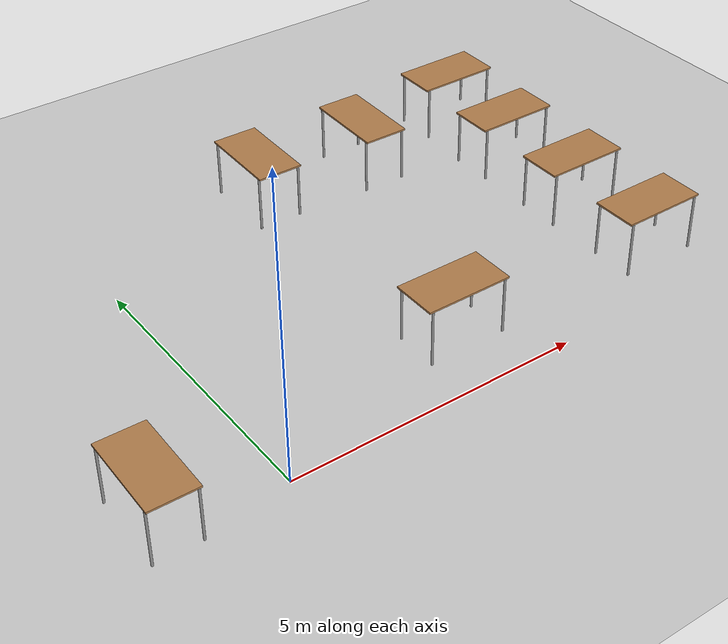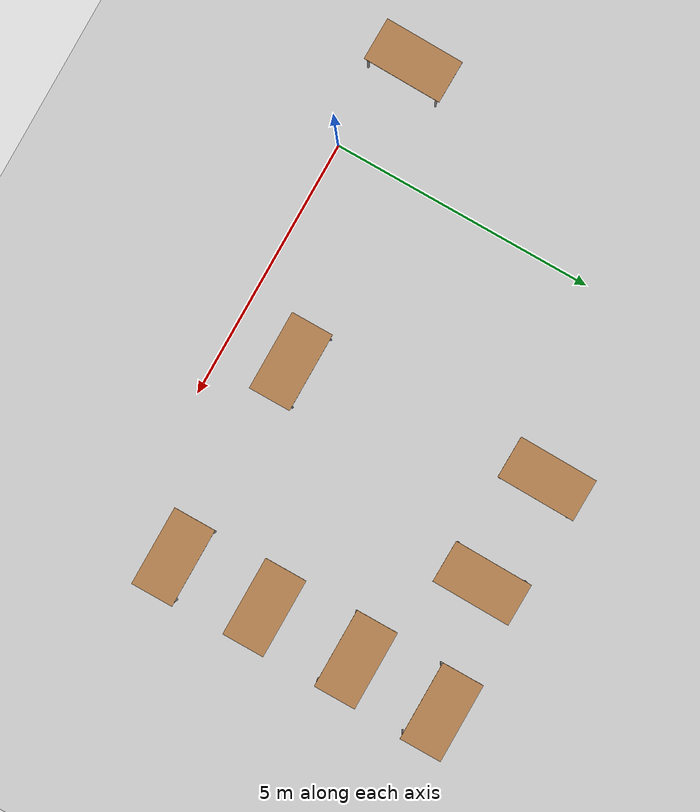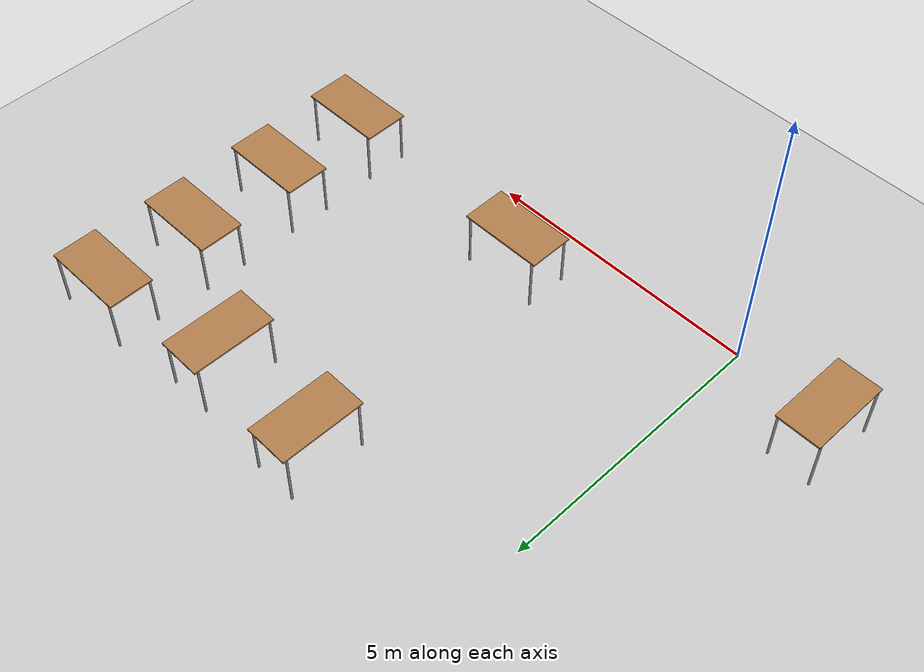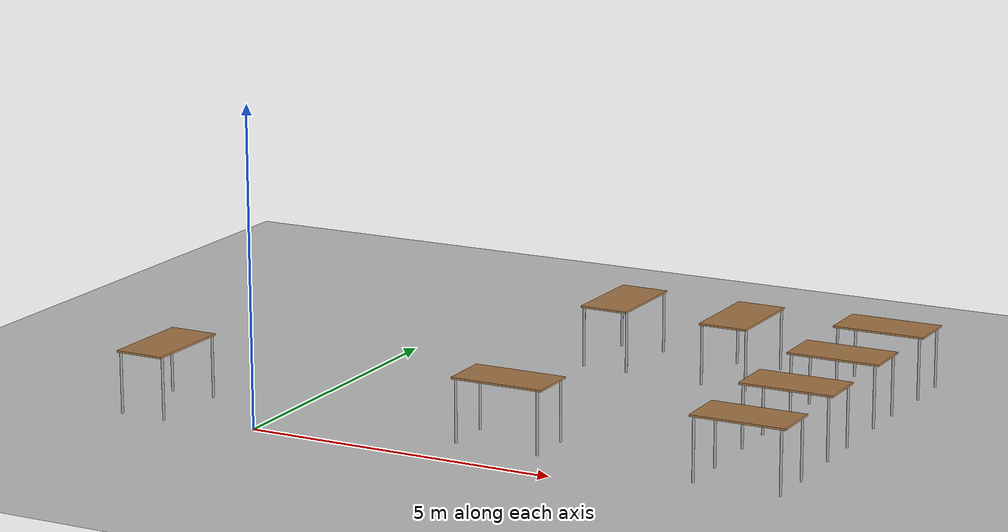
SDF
<sdf version="1.7">
 <world name="default">
  <model name="ground_plane">
   <static>1</static>
   <link name="link">
    <collision name="collision">
     <geometry><plane><normal>0 0 1</normal><size>100 100</size></plane></geometry>
     <surface><friction><ode><mu>100</mu><mu2>50</mu2></ode></friction></surface>
    </collision>
    <visual name="visual">
     <cast_shadows>0</cast_shadows>
     <geometry><plane><normal>0 0 1</normal><size>100 100</size></plane></geometry>
     <material>
      <script><uri>file://media/materials/scripts/gazebo.material</uri><name>Gazebo/Grey</name></script>
     </material>
    </visual>
   </link>
  </model>
  <model name="table_1">
   <static>1</static>
   <link name="link">
    <collision name="surface">
     <pose>0 0 1 0 -0 0</pose>
     <geometry><box><size>1.5 0.8 0.03</size></box></geometry>
     <surface><friction><ode><mu>0.6</mu><mu2>0.6</mu2></ode></friction></surface>
    </collision>
    <visual name="visual1">
     <pose>0 0 1 0 -0 0</pose>
     <geometry><box><size>1.5 0.8 0.03</size></box></geometry>
     <material>
      <script><uri>file://media/materials/scripts/gazebo.material</uri><name>Gazebo/Wood</name></script>
     </material>
    </visual>
    <collision name="front_left_leg">
     <pose>0.68 0.38 0.5 0 -0 0</pose>
     <geometry><cylinder><radius>0.02</radius><length>1</length></cylinder></geometry>
    </collision>
    <visual name="front_left_leg">
     <pose>0.68 0.38 0.5 0 -0 0</pose>
     <geometry><cylinder><radius>0.02</radius><length>1</length></cylinder></geometry>
     <material>
      <script><uri>file://media/materials/scripts/gazebo.material</uri><name>Gazebo/Grey</name></script>
     </material>
    </visual>
    <collision name="front_right_leg">
     <pose>0.68 -0.38 0.5 0 -0 0</pose>
     <geometry><cylinder><radius>0.02</radius><length>1</length></cylinder></geometry>
    </collision>
    <visual name="front_right_leg">
     <pose>0.68 -0.38 0.5 0 -0 0</pose>
     <geometry><cylinder><radius>0.02</radius><length>1</length></cylinder></geometry>
     <material>
      <script><uri>file://media/materials/scripts/gazebo.material</uri><name>Gazebo/Grey</name></script>
     </material>
    </visual>
    <collision name="back_right_leg">
     <pose>-0.68 -0.38 0.5 0 -0 0</pose>
     <geometry><cylinder><radius>0.02</radius><length>1</length></cylinder></geometry>
    </collision>
    <visual name="back_right_leg">
     <pose>-0.68 -0.38 0.5 0 -0 0</pose>
     <geometry><cylinder><radius>0.02</radius><length>1</length></cylinder></geometry>
     <material>
      <script><uri>file://media/materials/scripts/gazebo.material</uri><name>Gazebo/Grey</name></script>
     </material>
    </visual>
    <collision name="back_left_leg">
     <pose>-0.68 0.38 0.5 0 -0 0</pose>
     <geometry><cylinder><radius>0.02</radius><length>1</length></cylinder></geometry>
    </collision>
    <visual name="back_left_leg">
     <pose>-0.68 0.38 0.5 0 -0 0</pose>
     <geometry><cylinder><radius>0.02</radius><length>1</length></cylinder></geometry>
     <material>
      <script><uri>file://media/materials/scripts/gazebo.material</uri><name>Gazebo/Grey</name></script>
     </material>
    </visual>
   </link>
   <pose>7.67729 6.41149 0 0 -0 0</pose>
  </model>
  <model name="table_2">
   <static>1</static>
   <link name="link">
    <collision name="surface">
     <pose>0 0 1 0 -0 0</pose>
     <geometry><box><size>1.5 0.8 0.03</size></box></geometry>
     <surface><friction><ode><mu>0.6</mu><mu2>0.6</mu2></ode></friction></surface>
    </collision>
    <visual name="visual1">
     <pose>0 0 1 0 -0 0</pose>
     <geometry><box><size>1.5 0.8 0.03</size></box></geometry>
     <material>
      <script><uri>file://media/materials/scripts/gazebo.material</uri><name>Gazebo/Wood</name></script>
     </material>
    </visual>
    <collision name="front_left_leg">
     <pose>0.68 0.38 0.5 0 -0 0</pose>
     <geometry><cylinder><radius>0.02</radius><length>1</length></cylinder></geometry>
    </collision>
    <visual name="front_left_leg">
     <pose>0.68 0.38 0.5 0 -0 0</pose>
     <geometry><cylinder><radius>0.02</radius><length>1</length></cylinder></geometry>
     <material>
      <script><uri>file://media/materials/scripts/gazebo.material</uri><name>Gazebo/Grey</name></script>
     </material>
    </visual>
    <collision name="front_right_leg">
     <pose>0.68 -0.38 0.5 0 -0 0</pose>
     <geometry><cylinder><radius>0.02</radius><length>1</length></cylinder></geometry>
    </collision>
    <visual name="front_right_leg">
     <pose>0.68 -0.38 0.5 0 -0 0</pose>
     <geometry><cylinder><radius>0.02</radius><length>1</length></cylinder></geometry>
     <material>
      <script><uri>file://media/materials/scripts/gazebo.material</uri><name>Gazebo/Grey</name></script>
     </material>
    </visual>
    <collision name="back_right_leg">
     <pose>-0.68 -0.38 0.5 0 -0 0</pose>
     <geometry><cylinder><radius>0.02</radius><length>1</length></cylinder></geometry>
    </collision>
    <visual name="back_right_leg">
     <pose>-0.68 -0.38 0.5 0 -0 0</pose>
     <geometry><cylinder><radius>0.02</radius><length>1</length></cylinder></geometry>
     <material>
      <script><uri>file://media/materials/scripts/gazebo.material</uri><name>Gazebo/Grey</name></script>
     </material>
    </visual>
    <collision name="back_left_leg">
     <pose>-0.68 0.38 0.5 0 -0 0</pose>
     <geometry><cylinder><radius>0.02</radius><length>1</length></cylinder></geometry>
    </collision>
    <visual name="back_left_leg">
     <pose>-0.68 0.38 0.5 0 -0 0</pose>
     <geometry><cylinder><radius>0.02</radius><length>1</length></cylinder></geometry>
     <material>
      <script><uri>file://media/materials/scripts/gazebo.material</uri><name>Gazebo/Grey</name></script>
     </material>
    </visual>
   </link>
   <pose>7.62057 4.68594 0 0 -0 0</pose>
  </model>
  <model name="table_3">
   <static>1</static>
   <link name="link">
    <collision name="surface">
     <pose>0 0 1 0 -0 0</pose>
     <geometry><box><size>1.5 0.8 0.03</size></box></geometry>
     <surface><friction><ode><mu>0.6</mu><mu2>0.6</mu2></ode></friction></surface>
    </collision>
    <visual name="visual1">
     <pose>0 0 1 0 -0 0</pose>
     <geometry><box><size>1.5 0.8 0.03</size></box></geometry>
     <material>
      <script><uri>file://media/materials/scripts/gazebo.material</uri><name>Gazebo/Wood</name></script>
     </material>
    </visual>
    <collision name="front_left_leg">
     <pose>0.68 0.38 0.5 0 -0 0</pose>
     <geometry><cylinder><radius>0.02</radius><length>1</length></cylinder></geometry>
    </collision>
    <visual name="front_left_leg">
     <pose>0.68 0.38 0.5 0 -0 0</pose>
     <geometry><cylinder><radius>0.02</radius><length>1</length></cylinder></geometry>
     <material>
      <script><uri>file://media/materials/scripts/gazebo.material</uri><name>Gazebo/Grey</name></script>
     </material>
    </visual>
    <collision name="front_right_leg">
     <pose>0.68 -0.38 0.5 0 -0 0</pose>
     <geometry><cylinder><radius>0.02</radius><length>1</length></cylinder></geometry>
    </collision>
    <visual name="front_right_leg">
     <pose>0.68 -0.38 0.5 0 -0 0</pose>
     <geometry><cylinder><radius>0.02</radius><length>1</length></cylinder></geometry>
     <material>
      <script><uri>file://media/materials/scripts/gazebo.material</uri><name>Gazebo/Grey</name></script>
     </material>
    </visual>
    <collision name="back_right_leg">
     <pose>-0.68 -0.38 0.5 0 -0 0</pose>
     <geometry><cylinder><radius>0.02</radius><length>1</length></cylinder></geometry>
    </collision>
    <visual name="back_right_leg">
     <pose>-0.68 -0.38 0.5 0 -0 0</pose>
     <geometry><cylinder><radius>0.02</radius><length>1</length></cylinder></geometry>
     <material>
      <script><uri>file://media/materials/scripts/gazebo.material</uri><name>Gazebo/Grey</name></script>
     </material>
    </visual>
    <collision name="back_left_leg">
     <pose>-0.68 0.38 0.5 0 -0 0</pose>
     <geometry><cylinder><radius>0.02</radius><length>1</length></cylinder></geometry>
    </collision>
    <visual name="back_left_leg">
     <pose>-0.68 0.38 0.5 0 -0 0</pose>
     <geometry><cylinder><radius>0.02</radius><length>1</length></cylinder></geometry>
     <material>
      <script><uri>file://media/materials/scripts/gazebo.material</uri><name>Gazebo/Grey</name></script>
     </material>
    </visual>
   </link>
   <pose>7.61756 2.87716 0 0 -0 0</pose>
  </model>
  <model name="table_4">
   <static>1</static>
   <link name="link">
    <collision name="surface">
     <pose>0 0 1 0 -0 0</pose>
     <geometry><box><size>1.5 0.8 0.03</size></box></geometry>
     <surface><friction><ode><mu>0.6</mu><mu2>0.6</mu2></ode></friction></surface>
    </collision>
    <visual name="visual1">
     <pose>0 0 1 0 -0 0</pose>
     <geometry><box><size>1.5 0.8 0.03</size></box></geometry>
     <material>
      <script><uri>file://media/materials/scripts/gazebo.material</uri><name>Gazebo/Wood</name></script>
     </material>
    </visual>
    <collision name="front_left_leg">
     <pose>0.68 0.38 0.5 0 -0 0</pose>
     <geometry><cylinder><radius>0.02</radius><length>1</length></cylinder></geometry>
    </collision>
    <visual name="front_left_leg">
     <pose>0.68 0.38 0.5 0 -0 0</pose>
     <geometry><cylinder><radius>0.02</radius><length>1</length></cylinder></geometry>
     <material>
      <script><uri>file://media/materials/scripts/gazebo.material</uri><name>Gazebo/Grey</name></script>
     </material>
    </visual>
    <collision name="front_right_leg">
     <pose>0.68 -0.38 0.5 0 -0 0</pose>
     <geometry><cylinder><radius>0.02</radius><length>1</length></cylinder></geometry>
    </collision>
    <visual name="front_right_leg">
     <pose>0.68 -0.38 0.5 0 -0 0</pose>
     <geometry><cylinder><radius>0.02</radius><length>1</length></cylinder></geometry>
     <material>
      <script><uri>file://media/materials/scripts/gazebo.material</uri><name>Gazebo/Grey</name></script>
     </material>
    </visual>
    <collision name="back_right_leg">
     <pose>-0.68 -0.38 0.5 0 -0 0</pose>
     <geometry><cylinder><radius>0.02</radius><length>1</length></cylinder></geometry>
    </collision>
    <visual name="back_right_leg">
     <pose>-0.68 -0.38 0.5 0 -0 0</pose>
     <geometry><cylinder><radius>0.02</radius><length>1</length></cylinder></geometry>
     <material>
      <script><uri>file://media/materials/scripts/gazebo.material</uri><name>Gazebo/Grey</name></script>
     </material>
    </visual>
    <collision name="back_left_leg">
     <pose>-0.68 0.38 0.5 0 -0 0</pose>
     <geometry><cylinder><radius>0.02</radius><length>1</length></cylinder></geometry>
    </collision>
    <visual name="back_left_leg">
     <pose>-0.68 0.38 0.5 0 -0 0</pose>
     <geometry><cylinder><radius>0.02</radius><length>1</length></cylinder></geometry>
     <material>
      <script><uri>file://media/materials/scripts/gazebo.material</uri><name>Gazebo/Grey</name></script>
     </material>
    </visual>
   </link>
   <pose>7.63692 1.08746 0 0 -0 0</pose>
  </model>
  <model name="table_6">
   <static>1</static>
   <link name="link">
    <collision name="surface">
     <pose>0 0 1 0 -0 0</pose>
     <geometry><box><size>1.5 0.8 0.03</size></box></geometry>
     <surface><friction><ode><mu>0.6</mu><mu2>0.6</mu2></ode></friction></surface>
    </collision>
    <visual name="visual1">
     <pose>0 0 1 0 -0 0</pose>
     <geometry><box><size>1.5 0.8 0.03</size></box></geometry>
     <material>
      <script><uri>file://media/materials/scripts/gazebo.material</uri><name>Gazebo/Wood</name></script>
     </material>
    </visual>
    <collision name="front_left_leg">
     <pose>0.68 0.38 0.5 0 -0 0</pose>
     <geometry><cylinder><radius>0.02</radius><length>1</length></cylinder></geometry>
    </collision>
    <visual name="front_left_leg">
     <pose>0.68 0.38 0.5 0 -0 0</pose>
     <geometry><cylinder><radius>0.02</radius><length>1</length></cylinder></geometry>
     <material>
      <script><uri>file://media/materials/scripts/gazebo.material</uri><name>Gazebo/Grey</name></script>
     </material>
    </visual>
    <collision name="front_right_leg">
     <pose>0.68 -0.38 0.5 0 -0 0</pose>
     <geometry><cylinder><radius>0.02</radius><length>1</length></cylinder></geometry>
    </collision>
    <visual name="front_right_leg">
     <pose>0.68 -0.38 0.5 0 -0 0</pose>
     <geometry><cylinder><radius>0.02</radius><length>1</length></cylinder></geometry>
     <material>
      <script><uri>file://media/materials/scripts/gazebo.material</uri><name>Gazebo/Grey</name></script>
     </material>
    </visual>
    <collision name="back_right_leg">
     <pose>-0.68 -0.38 0.5 0 -0 0</pose>
     <geometry><cylinder><radius>0.02</radius><length>1</length></cylinder></geometry>
    </collision>
    <visual name="back_right_leg">
     <pose>-0.68 -0.38 0.5 0 -0 0</pose>
     <geometry><cylinder><radius>0.02</radius><length>1</length></cylinder></geometry>
     <material>
      <script><uri>file://media/materials/scripts/gazebo.material</uri><name>Gazebo/Grey</name></script>
     </material>
    </visual>
    <collision name="back_left_leg">
     <pose>-0.68 0.38 0.5 0 -0 0</pose>
     <geometry><cylinder><radius>0.02</radius><length>1</length></cylinder></geometry>
    </collision>
    <visual name="back_left_leg">
     <pose>-0.68 0.38 0.5 0 -0 0</pose>
     <geometry><cylinder><radius>0.02</radius><length>1</length></cylinder></geometry>
     <material>
      <script><uri>file://media/materials/scripts/gazebo.material</uri><name>Gazebo/Grey</name></script>
     </material>
    </visual>
   </link>
   <pose>3.71815 1.18577 0 0 -0 0</pose>
  </model>
  <model name="table_clone_clone_0_clone_3">
   <static>1</static>
   <link name="link">
    <collision name="surface">
     <pose>0 0 1 0 -0 0</pose>
     <geometry><box><size>1.5 0.8 0.03</size></box></geometry>
     <surface><friction><ode><mu>0.6</mu><mu2>0.6</mu2></ode></friction></surface>
    </collision>
    <visual name="visual1">
     <pose>0 0 1 0 -0 0</pose>
     <geometry><box><size>1.5 0.8 0.03</size></box></geometry>
     <material>
      <script><uri>file://media/materials/scripts/gazebo.material</uri><name>Gazebo/Wood</name></script>
     </material>
    </visual>
    <collision name="front_left_leg">
     <pose>0.68 0.38 0.5 0 -0 0</pose>
     <geometry><cylinder><radius>0.02</radius><length>1</length></cylinder></geometry>
    </collision>
    <visual name="front_left_leg">
     <pose>0.68 0.38 0.5 0 -0 0</pose>
     <geometry><cylinder><radius>0.02</radius><length>1</length></cylinder></geometry>
     <material>
      <script><uri>file://media/materials/scripts/gazebo.material</uri><name>Gazebo/Grey</name></script>
     </material>
    </visual>
    <collision name="front_right_leg">
     <pose>0.68 -0.38 0.5 0 -0 0</pose>
     <geometry><cylinder><radius>0.02</radius><length>1</length></cylinder></geometry>
    </collision>
    <visual name="front_right_leg">
     <pose>0.68 -0.38 0.5 0 -0 0</pose>
     <geometry><cylinder><radius>0.02</radius><length>1</length></cylinder></geometry>
     <material>
      <script><uri>file://media/materials/scripts/gazebo.material</uri><name>Gazebo/Grey</name></script>
     </material>
    </visual>
    <collision name="back_right_leg">
     <pose>-0.68 -0.38 0.5 0 -0 0</pose>
     <geometry><cylinder><radius>0.02</radius><length>1</length></cylinder></geometry>
    </collision>
    <visual name="back_right_leg">
     <pose>-0.68 -0.38 0.5 0 -0 0</pose>
     <geometry><cylinder><radius>0.02</radius><length>1</length></cylinder></geometry>
     <material>
      <script><uri>file://media/materials/scripts/gazebo.material</uri><name>Gazebo/Grey</name></script>
     </material>
    </visual>
    <collision name="back_left_leg">
     <pose>-0.68 0.38 0.5 0 -0 0</pose>
     <geometry><cylinder><radius>0.02</radius><length>1</length></cylinder></geometry>
    </collision>
    <visual name="back_left_leg">
     <pose>-0.68 0.38 0.5 0 -0 0</pose>
     <geometry><cylinder><radius>0.02</radius><length>1</length></cylinder></geometry>
     <material>
      <script><uri>file://media/materials/scripts/gazebo.material</uri><name>Gazebo/Grey</name></script>
     </material>
    </visual>
   </link>
   <pose>-1.83355 0.458726 0 0 0 -1.58514</pose>
  </model>
  <model name="table_clone_clone_0_clone_3_clone_2_clone">
   <static>1</static>
   <link name="link">
    <collision name="surface">
     <pose>0 0 1 0 -0 0</pose>
     <geometry><box><size>1.5 0.8 0.03</size></box></geometry>
     <surface><friction><ode><mu>0.6</mu><mu2>0.6</mu2></ode></friction></surface>
    </collision>
    <visual name="visual1">
     <pose>0 0 1 0 -0 0</pose>
     <geometry><box><size>1.5 0.8 0.03</size></box></geometry>
     <material>
      <script><uri>file://media/materials/scripts/gazebo.material</uri><name>Gazebo/Wood</name></script>
     </material>
    </visual>
    <collision name="front_left_leg">
     <pose>0.68 0.38 0.5 0 -0 0</pose>
     <geometry><cylinder><radius>0.02</radius><length>1</length></cylinder></geometry>
    </collision>
    <visual name="front_left_leg">
     <pose>0.68 0.38 0.5 0 -0 0</pose>
     <geometry><cylinder><radius>0.02</radius><length>1</length></cylinder></geometry>
     <material>
      <script><uri>file://media/materials/scripts/gazebo.material</uri><name>Gazebo/Grey</name></script>
     </material>
    </visual>
    <collision name="front_right_leg">
     <pose>0.68 -0.38 0.5 0 -0 0</pose>
     <geometry><cylinder><radius>0.02</radius><length>1</length></cylinder></geometry>
    </collision>
    <visual name="front_right_leg">
     <pose>0.68 -0.38 0.5 0 -0 0</pose>
     <geometry><cylinder><radius>0.02</radius><length>1</length></cylinder></geometry>
     <material>
      <script><uri>file://media/materials/scripts/gazebo.material</uri><name>Gazebo/Grey</name></script>
     </material>
    </visual>
    <collision name="back_right_leg">
     <pose>-0.68 -0.38 0.5 0 -0 0</pose>
     <geometry><cylinder><radius>0.02</radius><length>1</length></cylinder></geometry>
    </collision>
    <visual name="back_right_leg">
     <pose>-0.68 -0.38 0.5 0 -0 0</pose>
     <geometry><cylinder><radius>0.02</radius><length>1</length></cylinder></geometry>
     <material>
      <script><uri>file://media/materials/scripts/gazebo.material</uri><name>Gazebo/Grey</name></script>
     </material>
    </visual>
    <collision name="back_left_leg">
     <pose>-0.68 0.38 0.5 0 -0 0</pose>
     <geometry><cylinder><radius>0.02</radius><length>1</length></cylinder></geometry>
    </collision>
    <visual name="back_left_leg">
     <pose>-0.68 0.38 0.5 0 -0 0</pose>
     <geometry><cylinder><radius>0.02</radius><length>1</length></cylinder></geometry>
     <material>
      <script><uri>file://media/materials/scripts/gazebo.material</uri><name>Gazebo/Grey</name></script>
     </material>
    </visual>
   </link>
   <pose>5.41045 5.92675 0 0 0 -1.58514</pose>
  </model>
  <model name="table_clone_clone_0_clone_3_clone_2_clone_clone">
   <static>1</static>
   <link name="link">
    <collision name="surface">
     <pose>0 0 1 0 -0 0</pose>
     <geometry><box><size>1.5 0.8 0.03</size></box></geometry>
     <surface><friction><ode><mu>0.6</mu><mu2>0.6</mu2></ode></friction></surface>
    </collision>
    <visual name="visual1">
     <pose>0 0 1 0 -0 0</pose>
     <geometry><box><size>1.5 0.8 0.03</size></box></geometry>
     <material>
      <script><uri>file://media/materials/scripts/gazebo.material</uri><name>Gazebo/Wood</name></script>
     </material>
    </visual>
    <collision name="front_left_leg">
     <pose>0.68 0.38 0.5 0 -0 0</pose>
     <geometry><cylinder><radius>0.02</radius><length>1</length></cylinder></geometry>
    </collision>
    <visual name="front_left_leg">
     <pose>0.68 0.38 0.5 0 -0 0</pose>
     <geometry><cylinder><radius>0.02</radius><length>1</length></cylinder></geometry>
     <material>
      <script><uri>file://media/materials/scripts/gazebo.material</uri><name>Gazebo/Grey</name></script>
     </material>
    </visual>
    <collision name="front_right_leg">
     <pose>0.68 -0.38 0.5 0 -0 0</pose>
     <geometry><cylinder><radius>0.02</radius><length>1</length></cylinder></geometry>
    </collision>
    <visual name="front_right_leg">
     <pose>0.68 -0.38 0.5 0 -0 0</pose>
     <geometry><cylinder><radius>0.02</radius><length>1</length></cylinder></geometry>
     <material>
      <script><uri>file://media/materials/scripts/gazebo.material</uri><name>Gazebo/Grey</name></script>
     </material>
    </visual>
    <collision name="back_right_leg">
     <pose>-0.68 -0.38 0.5 0 -0 0</pose>
     <geometry><cylinder><radius>0.02</radius><length>1</length></cylinder></geometry>
    </collision>
    <visual name="back_right_leg">
     <pose>-0.68 -0.38 0.5 0 -0 0</pose>
     <geometry><cylinder><radius>0.02</radius><length>1</length></cylinder></geometry>
     <material>
      <script><uri>file://media/materials/scripts/gazebo.material</uri><name>Gazebo/Grey</name></script>
     </material>
    </visual>
    <collision name="back_left_leg">
     <pose>-0.68 0.38 0.5 0 -0 0</pose>
     <geometry><cylinder><radius>0.02</radius><length>1</length></cylinder></geometry>
    </collision>
    <visual name="back_left_leg">
     <pose>-0.68 0.38 0.5 0 -0 0</pose>
     <geometry><cylinder><radius>0.02</radius><length>1</length></cylinder></geometry>
     <material>
      <script><uri>file://media/materials/scripts/gazebo.material</uri><name>Gazebo/Grey</name></script>
     </material>
    </visual>
   </link>
   <pose>3.30068 6.0137 0 0 0 -1.58514</pose>
  </model>
 </world>
</sdf>
